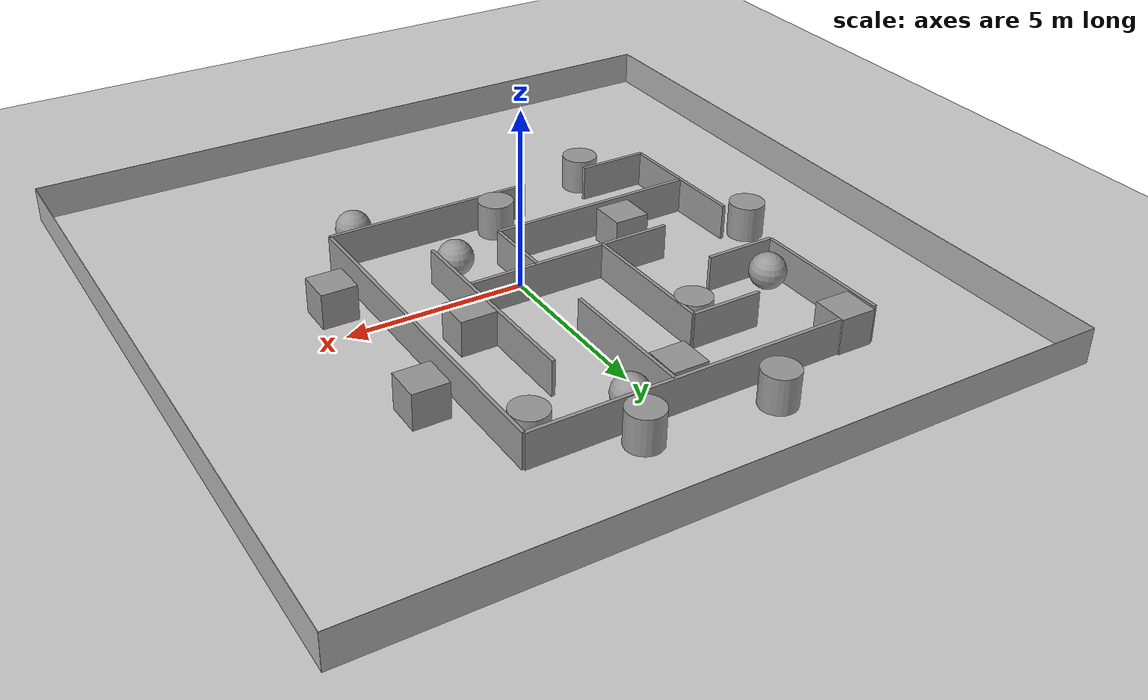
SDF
<sdf version="1.7">
 <world name="default">
  <physics type="ode">
   <max_step_size>0.004</max_step_size>
   <real_time_factor>1</real_time_factor>
   <real_time_update_rate>250</real_time_update_rate>
  </physics>
  <plugin name="gz::sim::systems::Physics" filename="gz-sim-physics-system"/>
  <plugin name="gz::sim::systems::UserCommands" filename="gz-sim-user-commands-system"/>
  <plugin name="gz::sim::systems::SceneBroadcaster" filename="gz-sim-scene-broadcaster-system"/>
  <plugin name="gz::sim::systems::Contact" filename="gz-sim-contact-system"/>
  <plugin name="gz::sim::systems::Imu" filename="gz-sim-imu-system"/>
  <plugin name="gz::sim::systems::Magnetometer" filename="gz-sim-magnetometer-system"/>
  <plugin name="gz::sim::systems::Altimeter" filename="gz-sim-altimeter-system"/>
  <plugin name="gz::sim::systems::NavSat" filename="gz-sim-navsat-system"/>
  <plugin name="gz::sim::systems::Sensors" filename="gz-sim-sensors-system">
   <render_engine>ogre2</render_engine>
  </plugin>
  <gravity>0 0 -9.8</gravity>
  <magnetic_field>6e-06 2.3e-05 -4.2e-05</magnetic_field>
  <atmosphere type="adiabatic"/>
  <spherical_coordinates>
   <surface_model>EARTH_WGS84</surface_model>
   <latitude_deg>39.7948</latitude_deg>
   <longitude_deg>-84.0863</longitude_deg>
   <elevation>265.2</elevation>
   <heading_deg>0</heading_deg>
  </spherical_coordinates>
  <scene>
   <grid>1</grid>
   <ambient>0.4 0.4 0.4 1</ambient>
   <background>0.7 0.7 0.7 1</background>
   <shadows>0</shadows>
  </scene>
  <light name="sunUTC" type="directional">
   <pose>0 0 500 0 -0 0</pose>
   <cast_shadows>0</cast_shadows>
   <direction>0.001 0.625 -0.78</direction>
   <diffuse>0.904 0.904 0.904 1</diffuse>
   <specular>0.271 0.271 0.271 1</specular>
   <attenuation><range>2000</range><linear>0</linear><constant>1</constant><quadratic>0</quadratic></attenuation>
   <spot><inner_angle>0</inner_angle><outer_angle>0</outer_angle><falloff>0</falloff></spot>
   <intensity>1</intensity>
  </light>
  <model name="ground_plane">
   <static>1</static>
   <link name="link">
    <collision name="collision">
     <geometry><plane><normal>0 0 1</normal><size>1 1</size></plane></geometry>
    </collision>
    <visual name="visual">
     <geometry><plane><normal>0 0 1</normal><size>100 100</size></plane></geometry>
     <material>
      <ambient>0.8 0.8 0.8 1</ambient>
      <diffuse>0.8 0.8 0.8 1</diffuse>
      <specular>0.8 0.8 0.8 1</specular>
     </material>
    </visual>
    <inertial>
     <mass>1</mass>
     <inertia><ixx>1</ixx><ixy>0</ixy><ixz>0</ixz><iyy>1</iyy><iyz>0</iyz><izz>1</izz></inertia>
    </inertial>
   </link>
  </model>
  <model name="wall_1">
   <pose>-10 0 0.5 0 0 -1.57</pose>
   <static>1</static>
   <link name="link">
    <collision name="collision"><geometry><box><size>20 0.01 1</size></box></geometry></collision>
    <visual name="visual">
     <geometry><box><size>20 0.01 1</size></box></geometry>
     <material>
      <ambient>0.7 0.7 0.7 1</ambient>
      <diffuse>0.7 0.7 0.7 1</diffuse>
      <specular>0.7 0.7 0.7 1</specular>
     </material>
    </visual>
    <inertial>
     <mass>1</mass>
     <inertia><ixx>1</ixx><ixy>0</ixy><ixz>0</ixz><iyy>1</iyy><iyz>0</iyz><izz>1</izz></inertia>
    </inertial>
   </link>
  </model>
  <model name="wall_2">
   <pose>10 0 0.5 0 0 -1.57</pose>
   <static>1</static>
   <link name="link">
    <collision name="collision"><geometry><box><size>20 0.01 1</size></box></geometry></collision>
    <visual name="visual">
     <geometry><box><size>20 0.01 1</size></box></geometry>
     <material>
      <ambient>0.7 0.7 0.7 1</ambient>
      <diffuse>0.7 0.7 0.7 1</diffuse>
      <specular>0.7 0.7 0.7 1</specular>
     </material>
    </visual>
    <inertial>
     <mass>1</mass>
     <inertia><ixx>1</ixx><ixy>0</ixy><ixz>0</ixz><iyy>1</iyy><iyz>0</iyz><izz>1</izz></inertia>
    </inertial>
   </link>
  </model>
  <model name="wall_3">
   <pose>0 10 0.5 0 -0 0</pose>
   <static>1</static>
   <link name="link">
    <collision name="collision"><geometry><box><size>20 0.01 1</size></box></geometry></collision>
    <visual name="visual">
     <geometry><box><size>20 0.01 1</size></box></geometry>
     <material>
      <ambient>0.7 0.7 0.7 1</ambient>
      <diffuse>0.7 0.7 0.7 1</diffuse>
      <specular>0.7 0.7 0.7 1</specular>
     </material>
    </visual>
    <inertial>
     <mass>1</mass>
     <inertia><ixx>1</ixx><ixy>0</ixy><ixz>0</ixz><iyy>1</iyy><iyz>0</iyz><izz>1</izz></inertia>
    </inertial>
   </link>
  </model>
  <model name="wall_4">
   <pose>0 -10 0.5 0 -0 0</pose>
   <static>1</static>
   <link name="link">
    <collision name="collision"><geometry><box><size>20 0.01 1</size></box></geometry></collision>
    <visual name="visual">
     <geometry><box><size>20 0.01 1</size></box></geometry>
     <material>
      <ambient>0.7 0.7 0.7 1</ambient>
      <diffuse>0.7 0.7 0.7 1</diffuse>
      <specular>0.7 0.7 0.7 1</specular>
     </material>
    </visual>
    <inertial>
     <mass>1</mass>
     <inertia><ixx>1</ixx><ixy>0</ixy><ixz>0</ixz><iyy>1</iyy><iyz>0</iyz><izz>1</izz></inertia>
    </inertial>
   </link>
  </model>
  <model name="s_maze">
   <link name="link_0_clone">
    <inertial>
     <mass>2000</mass>
     <inertia><ixx>16833.3</ixx><ixy>0</ixy><ixz>0</ixz><iyy>168.333</iyy><iyz>0</iyz><izz>16668.3</izz></inertia>
    </inertial>
    <pose>5 0 0 0 -0 0</pose>
    <visual name="visual">
     <geometry><box><size>0.1 10 1</size></box></geometry>
     <material>
      <lighting>1</lighting>
      <script><uri>file://media/materials/scripts/gazebo.material</uri><name>Gazebo/Grey</name></script>
      <shader type="vertex"><normal_map>__default__</normal_map></shader>
      <ambient>0.3 0.3 0.3 1</ambient>
      <diffuse>0.7 0.7 0.7 1</diffuse>
      <specular>0.01 0.01 0.01 1</specular>
      <emissive>0 0 0 1</emissive>
     </material>
    </visual>
    <collision name="collision">
     <geometry><box><size>0.1 10 1</size></box></geometry>
     <surface>
      <friction>
       <ode><mu>1</mu><mu2>1</mu2><fdir1>0 0 0</fdir1><slip1>0</slip1><slip2>0</slip2></ode>
       <torsional>
        <coefficient>1</coefficient>
        <patch_radius>0</patch_radius>
        <surface_radius>0</surface_radius>
        <use_patch_radius>1</use_patch_radius>
        <ode><slip>0</slip></ode>
       </torsional>
      </friction>
      <bounce><restitution_coefficient>0</restitution_coefficient><threshold>1e+06</threshold></bounce>
      <contact>
       <collide_without_contact>0</collide_without_contact>
       <collide_without_contact_bitmask>1</collide_without_contact_bitmask>
       <collide_bitmask>1</collide_bitmask>
       <ode>
        <soft_cfm>0</soft_cfm>
        <soft_erp>0.2</soft_erp>
        <kp>1e+13</kp>
        <kd>1</kd>
        <max_vel>0.01</max_vel>
        <min_depth>0</min_depth>
       </ode>
       <bullet>
        <split_impulse>1</split_impulse>
        <split_impulse_penetration_threshold>-0.01</split_impulse_penetration_threshold>
        <soft_cfm>0</soft_cfm>
        <soft_erp>0.2</soft_erp>
        <kp>1e+13</kp>
        <kd>1</kd>
       </bullet>
      </contact>
     </surface>
    </collision>
   </link>
   <link name="link_0_clone_0_clone">
    <inertial>
     <mass>400</mass>
     <inertia><ixx>166.667</ixx><ixy>0</ixy><ixz>0</ixz><iyy>33.6667</iyy><iyz>0</iyz><izz>133.667</izz></inertia>
    </inertial>
    <pose>1 -2 -0 0 -0 0</pose>
    <visual name="visual">
     <geometry><box><size>0.1 2 1</size></box></geometry>
     <material>
      <lighting>1</lighting>
      <script><uri>file://media/materials/scripts/gazebo.material</uri><name>Gazebo/Grey</name></script>
      <shader type="vertex"><normal_map>__default__</normal_map></shader>
      <ambient>0.3 0.3 0.3 1</ambient>
      <diffuse>0.7 0.7 0.7 1</diffuse>
      <specular>0.01 0.01 0.01 1</specular>
      <emissive>0 0 0 1</emissive>
     </material>
    </visual>
    <collision name="collision">
     <geometry><box><size>0.1 2 1</size></box></geometry>
     <surface>
      <friction>
       <ode><mu>1</mu><mu2>1</mu2><fdir1>0 0 0</fdir1><slip1>0</slip1><slip2>0</slip2></ode>
       <torsional>
        <coefficient>1</coefficient>
        <patch_radius>0</patch_radius>
        <surface_radius>0</surface_radius>
        <use_patch_radius>1</use_patch_radius>
        <ode><slip>0</slip></ode>
       </torsional>
      </friction>
      <bounce><restitution_coefficient>0</restitution_coefficient><threshold>1e+06</threshold></bounce>
      <contact>
       <collide_without_contact>0</collide_without_contact>
       <collide_without_contact_bitmask>1</collide_without_contact_bitmask>
       <collide_bitmask>1</collide_bitmask>
       <ode>
        <soft_cfm>0</soft_cfm>
        <soft_erp>0.2</soft_erp>
        <kp>1e+13</kp>
        <kd>1</kd>
        <max_vel>0.01</max_vel>
        <min_depth>0</min_depth>
       </ode>
       <bullet>
        <split_impulse>1</split_impulse>
        <split_impulse_penetration_threshold>-0.01</split_impulse_penetration_threshold>
        <soft_cfm>0</soft_cfm>
        <soft_erp>0.2</soft_erp>
        <kp>1e+13</kp>
        <kd>1</kd>
       </bullet>
      </contact>
     </surface>
    </collision>
   </link>
   <link name="link_0_clone_1_clone">
    <inertial>
     <mass>2000</mass>
     <inertia><ixx>16833.3</ixx><ixy>0</ixy><ixz>0</ixz><iyy>168.333</iyy><iyz>0</iyz><izz>16668.3</izz></inertia>
    </inertial>
    <pose>-0 5 -0 0 -0 1.5708</pose>
    <visual name="visual">
     <geometry><box><size>0.1 10 1</size></box></geometry>
     <material>
      <lighting>1</lighting>
      <script><uri>file://media/materials/scripts/gazebo.material</uri><name>Gazebo/Grey</name></script>
      <shader type="vertex"><normal_map>__default__</normal_map></shader>
      <ambient>0.3 0.3 0.3 1</ambient>
      <diffuse>0.7 0.7 0.7 1</diffuse>
      <specular>0.01 0.01 0.01 1</specular>
      <emissive>0 0 0 1</emissive>
     </material>
    </visual>
    <collision name="collision">
     <geometry><box><size>0.1 10 1</size></box></geometry>
     <surface>
      <friction>
       <ode><mu>1</mu><mu2>1</mu2><fdir1>0 0 0</fdir1><slip1>0</slip1><slip2>0</slip2></ode>
       <torsional>
        <coefficient>1</coefficient>
        <patch_radius>0</patch_radius>
        <surface_radius>0</surface_radius>
        <use_patch_radius>1</use_patch_radius>
        <ode><slip>0</slip></ode>
       </torsional>
      </friction>
      <bounce><restitution_coefficient>0</restitution_coefficient><threshold>1e+06</threshold></bounce>
      <contact>
       <collide_without_contact>0</collide_without_contact>
       <collide_without_contact_bitmask>1</collide_without_contact_bitmask>
       <collide_bitmask>1</collide_bitmask>
       <ode>
        <soft_cfm>0</soft_cfm>
        <soft_erp>0.2</soft_erp>
        <kp>1e+13</kp>
        <kd>1</kd>
        <max_vel>0.01</max_vel>
        <min_depth>0</min_depth>
       </ode>
       <bullet>
        <split_impulse>1</split_impulse>
        <split_impulse_penetration_threshold>-0.01</split_impulse_penetration_threshold>
        <soft_cfm>0</soft_cfm>
        <soft_erp>0.2</soft_erp>
        <kp>1e+13</kp>
        <kd>1</kd>
       </bullet>
      </contact>
     </surface>
    </collision>
   </link>
   <link name="link_0_clone_1_clone_0">
    <inertial>
     <mass>1200</mass>
     <inertia><ixx>3700</ixx><ixy>0</ixy><ixz>0</ixz><iyy>101</iyy><iyz>0</iyz><izz>3601</izz></inertia>
    </inertial>
    <pose>-2 -3 -0 0 -0 1.5708</pose>
    <visual name="visual">
     <geometry><box><size>0.1 6 1</size></box></geometry>
     <material>
      <lighting>1</lighting>
      <script><uri>file://media/materials/scripts/gazebo.material</uri><name>Gazebo/Grey</name></script>
      <shader type="vertex"><normal_map>__default__</normal_map></shader>
      <ambient>0.3 0.3 0.3 1</ambient>
      <diffuse>0.7 0.7 0.7 1</diffuse>
      <specular>0.01 0.01 0.01 1</specular>
      <emissive>0 0 0 1</emissive>
     </material>
    </visual>
    <collision name="collision">
     <geometry><box><size>0.1 6 1</size></box></geometry>
     <surface>
      <friction>
       <ode><mu>1</mu><mu2>1</mu2><fdir1>0 0 0</fdir1><slip1>0</slip1><slip2>0</slip2></ode>
       <torsional>
        <coefficient>1</coefficient>
        <patch_radius>0</patch_radius>
        <surface_radius>0</surface_radius>
        <use_patch_radius>1</use_patch_radius>
        <ode><slip>0</slip></ode>
       </torsional>
      </friction>
      <bounce><restitution_coefficient>0</restitution_coefficient><threshold>1e+06</threshold></bounce>
      <contact>
       <collide_without_contact>0</collide_without_contact>
       <collide_without_contact_bitmask>1</collide_without_contact_bitmask>
       <collide_bitmask>1</collide_bitmask>
       <ode>
        <soft_cfm>0</soft_cfm>
        <soft_erp>0.2</soft_erp>
        <kp>1e+13</kp>
        <kd>1</kd>
        <max_vel>0.01</max_vel>
        <min_depth>0</min_depth>
       </ode>
       <bullet>
        <split_impulse>1</split_impulse>
        <split_impulse_penetration_threshold>-0.01</split_impulse_penetration_threshold>
        <soft_cfm>0</soft_cfm>
        <soft_erp>0.2</soft_erp>
        <kp>1e+13</kp>
        <kd>1</kd>
       </bullet>
      </contact>
     </surface>
    </collision>
   </link>
   <link name="link_0_clone_1_clone_0_clone">
    <inertial>
     <mass>1200</mass>
     <inertia><ixx>3700</ixx><ixy>0</ixy><ixz>0</ixz><iyy>101</iyy><iyz>0</iyz><izz>3601</izz></inertia>
    </inertial>
    <pose>-0 -1 0 0 -0 1.5708</pose>
    <visual name="visual">
     <geometry><box><size>0.1 6 1</size></box></geometry>
     <material>
      <lighting>1</lighting>
      <script><uri>file://media/materials/scripts/gazebo.material</uri><name>Gazebo/Grey</name></script>
      <shader type="vertex"><normal_map>__default__</normal_map></shader>
      <ambient>0.3 0.3 0.3 1</ambient>
      <diffuse>0.7 0.7 0.7 1</diffuse>
      <specular>0.01 0.01 0.01 1</specular>
      <emissive>0 0 0 1</emissive>
     </material>
    </visual>
    <collision name="collision">
     <geometry><box><size>0.1 6 1</size></box></geometry>
     <surface>
      <friction>
       <ode><mu>1</mu><mu2>1</mu2><fdir1>0 0 0</fdir1><slip1>0</slip1><slip2>0</slip2></ode>
       <torsional>
        <coefficient>1</coefficient>
        <patch_radius>0</patch_radius>
        <surface_radius>0</surface_radius>
        <use_patch_radius>1</use_patch_radius>
        <ode><slip>0</slip></ode>
       </torsional>
      </friction>
      <bounce><restitution_coefficient>0</restitution_coefficient><threshold>1e+06</threshold></bounce>
      <contact>
       <collide_without_contact>0</collide_without_contact>
       <collide_without_contact_bitmask>1</collide_without_contact_bitmask>
       <collide_bitmask>1</collide_bitmask>
       <ode>
        <soft_cfm>0</soft_cfm>
        <soft_erp>0.2</soft_erp>
        <kp>1e+13</kp>
        <kd>1</kd>
        <max_vel>0.01</max_vel>
        <min_depth>0</min_depth>
       </ode>
       <bullet>
        <split_impulse>1</split_impulse>
        <split_impulse_penetration_threshold>-0.01</split_impulse_penetration_threshold>
        <soft_cfm>0</soft_cfm>
        <soft_erp>0.2</soft_erp>
        <kp>1e+13</kp>
        <kd>1</kd>
       </bullet>
      </contact>
     </surface>
    </collision>
   </link>
   <link name="link_0_clone_1_clone_0_clone_0">
    <inertial>
     <mass>1200</mass>
     <inertia><ixx>3700</ixx><ixy>0</ixy><ixz>0</ixz><iyy>101</iyy><iyz>0</iyz><izz>3601</izz></inertia>
    </inertial>
    <pose>2 -5 0 -0.004588 -0.005224 1.5715</pose>
    <visual name="visual">
     <geometry><box><size>0.1 6 1</size></box></geometry>
     <material>
      <lighting>1</lighting>
      <script><uri>file://media/materials/scripts/gazebo.material</uri><name>Gazebo/Grey</name></script>
      <shader type="vertex"><normal_map>__default__</normal_map></shader>
      <ambient>0.3 0.3 0.3 1</ambient>
      <diffuse>0.7 0.7 0.7 1</diffuse>
      <specular>0.01 0.01 0.01 1</specular>
      <emissive>0 0 0 1</emissive>
     </material>
    </visual>
    <collision name="collision">
     <geometry><box><size>0.1 6 1</size></box></geometry>
     <surface>
      <friction>
       <ode><mu>1</mu><mu2>1</mu2><fdir1>0 0 0</fdir1><slip1>0</slip1><slip2>0</slip2></ode>
       <torsional>
        <coefficient>1</coefficient>
        <patch_radius>0</patch_radius>
        <surface_radius>0</surface_radius>
        <use_patch_radius>1</use_patch_radius>
        <ode><slip>0</slip></ode>
       </torsional>
      </friction>
      <bounce><restitution_coefficient>0</restitution_coefficient><threshold>1e+06</threshold></bounce>
      <contact>
       <collide_without_contact>0</collide_without_contact>
       <collide_without_contact_bitmask>1</collide_without_contact_bitmask>
       <collide_bitmask>1</collide_bitmask>
       <ode>
        <soft_cfm>0</soft_cfm>
        <soft_erp>0.2</soft_erp>
        <kp>1e+13</kp>
        <kd>1</kd>
        <max_vel>0.01</max_vel>
        <min_depth>0</min_depth>
       </ode>
       <bullet>
        <split_impulse>1</split_impulse>
        <split_impulse_penetration_threshold>-0.01</split_impulse_penetration_threshold>
        <soft_cfm>0</soft_cfm>
        <soft_erp>0.2</soft_erp>
        <kp>1e+13</kp>
        <kd>1</kd>
       </bullet>
      </contact>
     </surface>
    </collision>
   </link>
   <link name="link_0_clone_1_clone_0_clone_clone">
    <inertial>
     <mass>400</mass>
     <inertia><ixx>166.667</ixx><ixy>0</ixy><ixz>0</ixz><iyy>33.6667</iyy><iyz>0</iyz><izz>133.667</izz></inertia>
    </inertial>
    <pose>-2 3 -0 0 -0 1.5708</pose>
    <visual name="visual">
     <geometry><box><size>0.1 2 1</size></box></geometry>
     <material>
      <lighting>1</lighting>
      <script><uri>file://media/materials/scripts/gazebo.material</uri><name>Gazebo/Grey</name></script>
      <shader type="vertex"><normal_map>__default__</normal_map></shader>
      <ambient>0.3 0.3 0.3 1</ambient>
      <diffuse>0.7 0.7 0.7 1</diffuse>
      <specular>0.01 0.01 0.01 1</specular>
      <emissive>0 0 0 1</emissive>
     </material>
    </visual>
    <collision name="collision">
     <geometry><box><size>0.1 2 1</size></box></geometry>
     <surface>
      <friction>
       <ode><mu>1</mu><mu2>1</mu2><fdir1>0 0 0</fdir1><slip1>0</slip1><slip2>0</slip2></ode>
       <torsional>
        <coefficient>1</coefficient>
        <patch_radius>0</patch_radius>
        <surface_radius>0</surface_radius>
        <use_patch_radius>1</use_patch_radius>
        <ode><slip>0</slip></ode>
       </torsional>
      </friction>
      <bounce><restitution_coefficient>0</restitution_coefficient><threshold>1e+06</threshold></bounce>
      <contact>
       <collide_without_contact>0</collide_without_contact>
       <collide_without_contact_bitmask>1</collide_without_contact_bitmask>
       <collide_bitmask>1</collide_bitmask>
       <ode>
        <soft_cfm>0</soft_cfm>
        <soft_erp>0.2</soft_erp>
        <kp>1e+13</kp>
        <kd>1</kd>
        <max_vel>0.01</max_vel>
        <min_depth>0</min_depth>
       </ode>
       <bullet>
        <split_impulse>1</split_impulse>
        <split_impulse_penetration_threshold>-0.01</split_impulse_penetration_threshold>
        <soft_cfm>0</soft_cfm>
        <soft_erp>0.2</soft_erp>
        <kp>1e+13</kp>
        <kd>1</kd>
       </bullet>
      </contact>
     </surface>
    </collision>
   </link>
   <link name="link_0_clone_1_clone_0_clone_clone_clone">
    <inertial>
     <mass>400</mass>
     <inertia><ixx>166.667</ixx><ixy>0</ixy><ixz>0</ixz><iyy>33.6667</iyy><iyz>0</iyz><izz>133.667</izz></inertia>
    </inertial>
    <pose>-4 1 0 0 -0 1.5708</pose>
    <visual name="visual">
     <geometry><box><size>0.1 2 1</size></box></geometry>
     <material>
      <lighting>1</lighting>
      <script><uri>file://media/materials/scripts/gazebo.material</uri><name>Gazebo/Grey</name></script>
      <shader type="vertex"><normal_map>__default__</normal_map></shader>
      <ambient>0.3 0.3 0.3 1</ambient>
      <diffuse>0.7 0.7 0.7 1</diffuse>
      <specular>0.01 0.01 0.01 1</specular>
      <emissive>0 0 0 1</emissive>
     </material>
    </visual>
    <collision name="collision">
     <geometry><box><size>0.1 2 1</size></box></geometry>
     <surface>
      <friction>
       <ode><mu>1</mu><mu2>1</mu2><fdir1>0 0 0</fdir1><slip1>0</slip1><slip2>0</slip2></ode>
       <torsional>
        <coefficient>1</coefficient>
        <patch_radius>0</patch_radius>
        <surface_radius>0</surface_radius>
        <use_patch_radius>1</use_patch_radius>
        <ode><slip>0</slip></ode>
       </torsional>
      </friction>
      <bounce><restitution_coefficient>0</restitution_coefficient><threshold>1e+06</threshold></bounce>
      <contact>
       <collide_without_contact>0</collide_without_contact>
       <collide_without_contact_bitmask>1</collide_without_contact_bitmask>
       <collide_bitmask>1</collide_bitmask>
       <ode>
        <soft_cfm>0</soft_cfm>
        <soft_erp>0.2</soft_erp>
        <kp>1e+13</kp>
        <kd>1</kd>
        <max_vel>0.01</max_vel>
        <min_depth>0</min_depth>
       </ode>
       <bullet>
        <split_impulse>1</split_impulse>
        <split_impulse_penetration_threshold>-0.01</split_impulse_penetration_threshold>
        <soft_cfm>0</soft_cfm>
        <soft_erp>0.2</soft_erp>
        <kp>1e+13</kp>
        <kd>1</kd>
       </bullet>
      </contact>
     </surface>
    </collision>
   </link>
   <link name="link_0_clone_1_clone_0_clone_clone_clone_0">
    <inertial>
     <mass>400</mass>
     <inertia><ixx>166.667</ixx><ixy>0</ixy><ixz>0</ixz><iyy>33.6667</iyy><iyz>0</iyz><izz>133.667</izz></inertia>
    </inertial>
    <pose>-4 -5 -0 -0.004588 -0.005224 1.5715</pose>
    <visual name="visual">
     <geometry><box><size>0.1 2 1</size></box></geometry>
     <material>
      <lighting>1</lighting>
      <script><uri>file://media/materials/scripts/gazebo.material</uri><name>Gazebo/Grey</name></script>
      <shader type="vertex"><normal_map>__default__</normal_map></shader>
      <ambient>0.3 0.3 0.3 1</ambient>
      <diffuse>0.7 0.7 0.7 1</diffuse>
      <specular>0.01 0.01 0.01 1</specular>
      <emissive>0 0 0 1</emissive>
     </material>
    </visual>
    <collision name="collision">
     <geometry><box><size>0.1 2 1</size></box></geometry>
     <surface>
      <friction>
       <ode><mu>1</mu><mu2>1</mu2><fdir1>0 0 0</fdir1><slip1>0</slip1><slip2>0</slip2></ode>
       <torsional>
        <coefficient>1</coefficient>
        <patch_radius>0</patch_radius>
        <surface_radius>0</surface_radius>
        <use_patch_radius>1</use_patch_radius>
        <ode><slip>0</slip></ode>
       </torsional>
      </friction>
      <bounce><restitution_coefficient>0</restitution_coefficient><threshold>1e+06</threshold></bounce>
      <contact>
       <collide_without_contact>0</collide_without_contact>
       <collide_without_contact_bitmask>1</collide_without_contact_bitmask>
       <collide_bitmask>1</collide_bitmask>
       <ode>
        <soft_cfm>0</soft_cfm>
        <soft_erp>0.2</soft_erp>
        <kp>1e+13</kp>
        <kd>1</kd>
        <max_vel>0.01</max_vel>
        <min_depth>0</min_depth>
       </ode>
       <bullet>
        <split_impulse>1</split_impulse>
        <split_impulse_penetration_threshold>-0.01</split_impulse_penetration_threshold>
        <soft_cfm>0</soft_cfm>
        <soft_erp>0.2</soft_erp>
        <kp>1e+13</kp>
        <kd>1</kd>
       </bullet>
      </contact>
     </surface>
    </collision>
   </link>
   <link name="link_0_clone_2">
    <inertial>
     <mass>1200</mass>
     <inertia><ixx>3700</ixx><ixy>0</ixy><ixz>0</ixz><iyy>101</iyy><iyz>0</iyz><izz>3601</izz></inertia>
    </inertial>
    <pose>3 -0 -0 0 -0 0</pose>
    <visual name="visual">
     <geometry><box><size>0.1 6 1</size></box></geometry>
     <material>
      <lighting>1</lighting>
      <script><uri>file://media/materials/scripts/gazebo.material</uri><name>Gazebo/Grey</name></script>
      <shader type="vertex"><normal_map>__default__</normal_map></shader>
      <ambient>0.3 0.3 0.3 1</ambient>
      <diffuse>0.7 0.7 0.7 1</diffuse>
      <specular>0.01 0.01 0.01 1</specular>
      <emissive>0 0 0 1</emissive>
     </material>
    </visual>
    <collision name="collision">
     <geometry><box><size>0.1 6 1</size></box></geometry>
     <surface>
      <friction>
       <ode><mu>1</mu><mu2>1</mu2><fdir1>0 0 0</fdir1><slip1>0</slip1><slip2>0</slip2></ode>
       <torsional>
        <coefficient>1</coefficient>
        <patch_radius>0</patch_radius>
        <surface_radius>0</surface_radius>
        <use_patch_radius>1</use_patch_radius>
        <ode><slip>0</slip></ode>
       </torsional>
      </friction>
      <bounce><restitution_coefficient>0</restitution_coefficient><threshold>1e+06</threshold></bounce>
      <contact>
       <collide_without_contact>0</collide_without_contact>
       <collide_without_contact_bitmask>1</collide_without_contact_bitmask>
       <collide_bitmask>1</collide_bitmask>
       <ode>
        <soft_cfm>0</soft_cfm>
        <soft_erp>0.2</soft_erp>
        <kp>1e+13</kp>
        <kd>1</kd>
        <max_vel>0.01</max_vel>
        <min_depth>0</min_depth>
       </ode>
       <bullet>
        <split_impulse>1</split_impulse>
        <split_impulse_penetration_threshold>-0.01</split_impulse_penetration_threshold>
        <soft_cfm>0</soft_cfm>
        <soft_erp>0.2</soft_erp>
        <kp>1e+13</kp>
        <kd>1</kd>
       </bullet>
      </contact>
     </surface>
    </collision>
   </link>
   <link name="link_0_clone_2_clone">
    <inertial>
     <mass>0.188114</mass>
     <inertia>
      <ixx>0.0313523</ixx>
      <ixy>0</ixy>
      <ixz>0</ixz>
      <iyy>0.0162309</iyy>
      <iyz>0</iyz>
      <izz>0.0162309</izz>
     </inertia>
    </inertial>
    <pose>-1 1 0 0 -0 0</pose>
    <visual name="visual">
     <geometry><box><size>0.1 4 1</size></box></geometry>
     <material>
      <lighting>1</lighting>
      <script><uri>file://media/materials/scripts/gazebo.material</uri><name>Gazebo/Grey</name></script>
      <shader type="vertex"><normal_map>__default__</normal_map></shader>
      <ambient>0.3 0.3 0.3 1</ambient>
      <diffuse>0.7 0.7 0.7 1</diffuse>
      <specular>0.01 0.01 0.01 1</specular>
      <emissive>0 0 0 1</emissive>
     </material>
    </visual>
    <collision name="collision">
     <geometry><box><size>0.1 4 1</size></box></geometry>
     <surface>
      <friction>
       <ode><mu>1</mu><mu2>1</mu2><fdir1>0 0 0</fdir1><slip1>0</slip1><slip2>0</slip2></ode>
       <torsional>
        <coefficient>1</coefficient>
        <patch_radius>0</patch_radius>
        <surface_radius>0</surface_radius>
        <use_patch_radius>1</use_patch_radius>
        <ode><slip>0</slip></ode>
       </torsional>
      </friction>
      <bounce><restitution_coefficient>0</restitution_coefficient><threshold>1e+06</threshold></bounce>
      <contact>
       <collide_without_contact>0</collide_without_contact>
       <collide_without_contact_bitmask>1</collide_without_contact_bitmask>
       <collide_bitmask>1</collide_bitmask>
       <ode>
        <soft_cfm>0</soft_cfm>
        <soft_erp>0.2</soft_erp>
        <kp>1e+13</kp>
        <kd>1</kd>
        <max_vel>0.01</max_vel>
        <min_depth>0</min_depth>
       </ode>
       <bullet>
        <split_impulse>1</split_impulse>
        <split_impulse_penetration_threshold>-0.01</split_impulse_penetration_threshold>
        <soft_cfm>0</soft_cfm>
        <soft_erp>0.2</soft_erp>
        <kp>1e+13</kp>
        <kd>1</kd>
       </bullet>
      </contact>
     </surface>
    </collision>
   </link>
   <link name="link_0_clone_2_clone_clone">
    <inertial>
     <mass>800</mass>
     <inertia><ixx>1133.33</ixx><ixy>0</ixy><ixz>0</ixz><iyy>67.3333</iyy><iyz>0</iyz><izz>1067.33</izz></inertia>
    </inertial>
    <pose>1 3 -0 0 -0 0</pose>
    <visual name="visual">
     <geometry><box><size>0.1 4 1</size></box></geometry>
     <material>
      <lighting>1</lighting>
      <script><uri>file://media/materials/scripts/gazebo.material</uri><name>Gazebo/Grey</name></script>
      <shader type="vertex"><normal_map>__default__</normal_map></shader>
      <ambient>0.3 0.3 0.3 1</ambient>
      <diffuse>0.7 0.7 0.7 1</diffuse>
      <specular>0.01 0.01 0.01 1</specular>
      <emissive>0 0 0 1</emissive>
     </material>
    </visual>
    <collision name="collision">
     <geometry><box><size>0.1 4 1</size></box></geometry>
     <surface>
      <friction>
       <ode><mu>1</mu><mu2>1</mu2><fdir1>0 0 0</fdir1><slip1>0</slip1><slip2>0</slip2></ode>
       <torsional>
        <coefficient>1</coefficient>
        <patch_radius>0</patch_radius>
        <surface_radius>0</surface_radius>
        <use_patch_radius>1</use_patch_radius>
        <ode><slip>0</slip></ode>
       </torsional>
      </friction>
      <bounce><restitution_coefficient>0</restitution_coefficient><threshold>1e+06</threshold></bounce>
      <contact>
       <collide_without_contact>0</collide_without_contact>
       <collide_without_contact_bitmask>1</collide_without_contact_bitmask>
       <collide_bitmask>1</collide_bitmask>
       <ode>
        <soft_cfm>0</soft_cfm>
        <soft_erp>0.2</soft_erp>
        <kp>1e+13</kp>
        <kd>1</kd>
        <max_vel>0.01</max_vel>
        <min_depth>0</min_depth>
       </ode>
       <bullet>
        <split_impulse>1</split_impulse>
        <split_impulse_penetration_threshold>-0.01</split_impulse_penetration_threshold>
        <soft_cfm>0</soft_cfm>
        <soft_erp>0.2</soft_erp>
        <kp>1e+13</kp>
        <kd>1</kd>
       </bullet>
      </contact>
     </surface>
    </collision>
   </link>
   <link name="link_0_clone_2_clone_clone_0">
    <inertial>
     <mass>800</mass>
     <inertia><ixx>1133.33</ixx><ixy>0</ixy><ixz>0</ixz><iyy>67.3333</iyy><iyz>0</iyz><izz>1067.33</izz></inertia>
    </inertial>
    <pose>-5 3 -0 0.005224 -0.004588 0.000681</pose>
    <visual name="visual">
     <geometry><box><size>0.1 4 1</size></box></geometry>
     <material>
      <lighting>1</lighting>
      <script><uri>file://media/materials/scripts/gazebo.material</uri><name>Gazebo/Grey</name></script>
      <shader type="vertex"><normal_map>__default__</normal_map></shader>
      <ambient>0.3 0.3 0.3 1</ambient>
      <diffuse>0.7 0.7 0.7 1</diffuse>
      <specular>0.01 0.01 0.01 1</specular>
      <emissive>0 0 0 1</emissive>
     </material>
    </visual>
    <collision name="collision">
     <geometry><box><size>0.1 4 1</size></box></geometry>
     <surface>
      <friction>
       <ode><mu>1</mu><mu2>1</mu2><fdir1>0 0 0</fdir1><slip1>0</slip1><slip2>0</slip2></ode>
       <torsional>
        <coefficient>1</coefficient>
        <patch_radius>0</patch_radius>
        <surface_radius>0</surface_radius>
        <use_patch_radius>1</use_patch_radius>
        <ode><slip>0</slip></ode>
       </torsional>
      </friction>
      <bounce><restitution_coefficient>0</restitution_coefficient><threshold>1e+06</threshold></bounce>
      <contact>
       <collide_without_contact>0</collide_without_contact>
       <collide_without_contact_bitmask>1</collide_without_contact_bitmask>
       <collide_bitmask>1</collide_bitmask>
       <ode>
        <soft_cfm>0</soft_cfm>
        <soft_erp>0.2</soft_erp>
        <kp>1e+13</kp>
        <kd>1</kd>
        <max_vel>0.01</max_vel>
        <min_depth>0</min_depth>
       </ode>
       <bullet>
        <split_impulse>1</split_impulse>
        <split_impulse_penetration_threshold>-0.01</split_impulse_penetration_threshold>
        <soft_cfm>0</soft_cfm>
        <soft_erp>0.2</soft_erp>
        <kp>1e+13</kp>
        <kd>1</kd>
       </bullet>
      </contact>
     </surface>
    </collision>
   </link>
   <link name="link_0_clone_2_clone_clone_0_clone">
    <inertial>
     <mass>800</mass>
     <inertia><ixx>1133.33</ixx><ixy>0</ixy><ixz>0</ixz><iyy>67.3333</iyy><iyz>0</iyz><izz>1067.33</izz></inertia>
    </inertial>
    <pose>-5 -3 -0 0.010445 -0.009179 0.001338</pose>
    <visual name="visual">
     <geometry><box><size>0.1 4 1</size></box></geometry>
     <material>
      <lighting>1</lighting>
      <script><uri>file://media/materials/scripts/gazebo.material</uri><name>Gazebo/Grey</name></script>
      <shader type="vertex"><normal_map>__default__</normal_map></shader>
      <ambient>0.3 0.3 0.3 1</ambient>
      <diffuse>0.7 0.7 0.7 1</diffuse>
      <specular>0.01 0.01 0.01 1</specular>
      <emissive>0 0 0 1</emissive>
     </material>
    </visual>
    <collision name="collision">
     <geometry><box><size>0.1 4 1</size></box></geometry>
     <surface>
      <friction>
       <ode><mu>1</mu><mu2>1</mu2><fdir1>0 0 0</fdir1><slip1>0</slip1><slip2>0</slip2></ode>
       <torsional>
        <coefficient>1</coefficient>
        <patch_radius>0</patch_radius>
        <surface_radius>0</surface_radius>
        <use_patch_radius>1</use_patch_radius>
        <ode><slip>0</slip></ode>
       </torsional>
      </friction>
      <bounce><restitution_coefficient>0</restitution_coefficient><threshold>1e+06</threshold></bounce>
      <contact>
       <collide_without_contact>0</collide_without_contact>
       <collide_without_contact_bitmask>1</collide_without_contact_bitmask>
       <collide_bitmask>1</collide_bitmask>
       <ode>
        <soft_cfm>0</soft_cfm>
        <soft_erp>0.2</soft_erp>
        <kp>1e+13</kp>
        <kd>1</kd>
        <max_vel>0.01</max_vel>
        <min_depth>0</min_depth>
       </ode>
       <bullet>
        <split_impulse>1</split_impulse>
        <split_impulse_penetration_threshold>-0.01</split_impulse_penetration_threshold>
        <soft_cfm>0</soft_cfm>
        <soft_erp>0.2</soft_erp>
        <kp>1e+13</kp>
        <kd>1</kd>
       </bullet>
      </contact>
     </surface>
    </collision>
   </link>
   <static>0</static>
   <pose>-1.10617 1.67619 0.499718 4.9e-05 -8e-06 0.011422</pose>
  </model>
  <audio><device>default</device></audio>
  <model name="unit_sphere">
   <pose>-5.54558 3.29229 0.5 -0.132673 0.06273 0.003091</pose>
   <link name="link">
    <inertial>
     <mass>1</mass>
     <inertia><ixx>0.1</ixx><ixy>0</ixy><ixz>0</ixz><iyy>0.1</iyy><iyz>0</iyz><izz>0.1</izz></inertia>
    </inertial>
    <collision name="collision"><geometry><sphere><radius>0.5</radius></sphere></geometry></collision>
    <visual name="visual">
     <geometry><sphere><radius>0.5</radius></sphere></geometry>
     <material>
      <script><name>Gazebo/Grey</name><uri>file://media/materials/scripts/gazebo.material</uri></script>
     </material>
    </visual>
   </link>
  </model>
  <model name="unit_cylinder">
   <pose>-6.85274 0.667862 0.499883 0 -0 0</pose>
   <link name="link">
    <inertial>
     <mass>1</mass>
     <inertia><ixx>0.145833</ixx><ixy>0</ixy><ixz>0</ixz><iyy>0.145833</iyy><iyz>0</iyz><izz>0.125</izz></inertia>
    </inertial>
    <collision name="collision">
     <geometry><cylinder><radius>0.5</radius><length>1</length></cylinder></geometry>
    </collision>
    <visual name="visual">
     <geometry><cylinder><radius>0.5</radius><length>1</length></cylinder></geometry>
     <material>
      <script><name>Gazebo/Grey</name><uri>file://media/materials/scripts/gazebo.material</uri></script>
     </material>
    </visual>
   </link>
  </model>
  <model name="unit_box">
   <pose>-0.727082 6.03045 0.5 0 -0 0</pose>
   <link name="link">
    <inertial>
     <mass>1</mass>
     <inertia>
      <ixx>0.166667</ixx>
      <ixy>0</ixy>
      <ixz>0</ixz>
      <iyy>0.166667</iyy>
      <iyz>0</iyz>
      <izz>0.166667</izz>
     </inertia>
    </inertial>
    <collision name="collision"><geometry><box><size>1 1 1</size></box></geometry></collision>
    <visual name="visual">
     <geometry><box><size>1 1 1</size></box></geometry>
     <material>
      <script><name>Gazebo/Grey</name><uri>file://media/materials/scripts/gazebo.material</uri></script>
     </material>
    </visual>
   </link>
  </model>
  <model name="unit_sphere_0">
   <pose>0.63506 6.08692 0.5 0 -0 0</pose>
   <link name="link">
    <inertial>
     <mass>1</mass>
     <inertia><ixx>0.1</ixx><ixy>0</ixy><ixz>0</ixz><iyy>0.1</iyy><iyz>0</iyz><izz>0.1</izz></inertia>
    </inertial>
    <collision name="collision"><geometry><sphere><radius>0.5</radius></sphere></geometry></collision>
    <visual name="visual">
     <geometry><sphere><radius>0.5</radius></sphere></geometry>
     <material>
      <script><name>Gazebo/Grey</name><uri>file://media/materials/scripts/gazebo.material</uri></script>
     </material>
    </visual>
   </link>
  </model>
  <model name="unit_cylinder_0">
   <pose>-2.62472 4.00486 0.499883 0 -0 0</pose>
   <link name="link">
    <inertial>
     <mass>1</mass>
     <inertia><ixx>0.145833</ixx><ixy>0</ixy><ixz>0</ixz><iyy>0.145833</iyy><iyz>0</iyz><izz>0.125</izz></inertia>
    </inertial>
    <collision name="collision">
     <geometry><cylinder><radius>0.5</radius><length>1</length></cylinder></geometry>
    </collision>
    <visual name="visual">
     <geometry><cylinder><radius>0.5</radius><length>1</length></cylinder></geometry>
     <material>
      <script><name>Gazebo/Grey</name><uri>file://media/materials/scripts/gazebo.material</uri></script>
     </material>
    </visual>
   </link>
  </model>
  <model name="unit_box_0">
   <pose>-3.55226 -0.596842 0.5 0 -0 0</pose>
   <link name="link">
    <inertial>
     <mass>1</mass>
     <inertia>
      <ixx>0.166667</ixx>
      <ixy>0</ixy>
      <ixz>0</ixz>
      <iyy>0.166667</iyy>
      <iyz>0</iyz>
      <izz>0.166667</izz>
     </inertia>
    </inertial>
    <collision name="collision"><geometry><box><size>1 1 1</size></box></geometry></collision>
    <visual name="visual">
     <geometry><box><size>1 1 1</size></box></geometry>
     <material>
      <script><name>Gazebo/Grey</name><uri>file://media/materials/scripts/gazebo.material</uri></script>
     </material>
    </visual>
   </link>
  </model>
  <model name="unit_cylinder_1">
   <pose>-0.865835 -2.89471 0.499883 0 -0 0</pose>
   <link name="link">
    <inertial>
     <mass>1</mass>
     <inertia><ixx>0.145833</ixx><ixy>0</ixy><ixz>0</ixz><iyy>0.145833</iyy><iyz>0</iyz><izz>0.125</izz></inertia>
    </inertial>
    <collision name="collision">
     <geometry><cylinder><radius>0.5</radius><length>1</length></cylinder></geometry>
    </collision>
    <visual name="visual">
     <geometry><cylinder><radius>0.5</radius><length>1</length></cylinder></geometry>
     <material>
      <script><name>Gazebo/Grey</name><uri>file://media/materials/scripts/gazebo.material</uri></script>
     </material>
    </visual>
   </link>
  </model>
  <model name="unit_box_1">
   <pose>2.44304 1.70427 0.5 0 -0 0.003119</pose>
   <link name="link">
    <inertial>
     <mass>1</mass>
     <inertia>
      <ixx>0.166667</ixx>
      <ixy>0</ixy>
      <ixz>0</ixz>
      <iyy>0.166667</iyy>
      <iyz>0</iyz>
      <izz>0.166667</izz>
     </inertia>
    </inertial>
    <collision name="collision"><geometry><box><size>1 1 1</size></box></geometry></collision>
    <visual name="visual">
     <geometry><box><size>1 1 1</size></box></geometry>
     <material>
      <script><name>Gazebo/Grey</name><uri>file://media/materials/scripts/gazebo.material</uri></script>
     </material>
    </visual>
   </link>
  </model>
  <model name="unit_sphere_1">
   <pose>1.19559 -1.39623 0.5 0 -0 0</pose>
   <link name="link">
    <inertial>
     <mass>1</mass>
     <inertia><ixx>0.1</ixx><ixy>0</ixy><ixz>0</ixz><iyy>0.1</iyy><iyz>0</iyz><izz>0.1</izz></inertia>
    </inertial>
    <collision name="collision"><geometry><sphere><radius>0.5</radius></sphere></geometry></collision>
    <visual name="visual">
     <geometry><sphere><radius>0.5</radius></sphere></geometry>
     <material>
      <script><name>Gazebo/Grey</name><uri>file://media/materials/scripts/gazebo.material</uri></script>
     </material>
    </visual>
   </link>
  </model>
  <model name="unit_cylinder_2">
   <pose>3.29436 6.03215 0.499883 0 -0 -0.004288</pose>
   <link name="link">
    <inertial>
     <mass>1</mass>
     <inertia><ixx>0.145833</ixx><ixy>0</ixy><ixz>0</ixz><iyy>0.145833</iyy><iyz>0</iyz><izz>0.125</izz></inertia>
    </inertial>
    <collision name="collision">
     <geometry><cylinder><radius>0.5</radius><length>1</length></cylinder></geometry>
    </collision>
    <visual name="visual">
     <geometry><cylinder><radius>0.5</radius><length>1</length></cylinder></geometry>
     <material>
      <script><name>Gazebo/Grey</name><uri>file://media/materials/scripts/gazebo.material</uri></script>
     </material>
    </visual>
   </link>
  </model>
  <model name="unit_box_2">
   <pose>-5.55686 6.23097 0.5 0 -0 -0.009688</pose>
   <link name="link">
    <inertial>
     <mass>1</mass>
     <inertia>
      <ixx>0.166667</ixx>
      <ixy>0</ixy>
      <ixz>0</ixz>
      <iyy>0.166667</iyy>
      <iyz>0</iyz>
      <izz>0.166667</izz>
     </inertia>
    </inertial>
    <collision name="collision"><geometry><box><size>1 1 1</size></box></geometry></collision>
    <visual name="visual">
     <geometry><box><size>1 1 1</size></box></geometry>
     <material>
      <script><name>Gazebo/Grey</name><uri>file://media/materials/scripts/gazebo.material</uri></script>
     </material>
    </visual>
   </link>
  </model>
  <model name="unit_cylinder_3">
   <pose>-4.40013 -4.14486 0.499883 0 -0 0</pose>
   <link name="link">
    <inertial>
     <mass>1</mass>
     <inertia><ixx>0.145833</ixx><ixy>0</ixy><ixz>0</ixz><iyy>0.145833</iyy><iyz>0</iyz><izz>0.125</izz></inertia>
    </inertial>
    <collision name="collision">
     <geometry><cylinder><radius>0.5</radius><length>1</length></cylinder></geometry>
    </collision>
    <visual name="visual">
     <geometry><cylinder><radius>0.5</radius><length>1</length></cylinder></geometry>
     <material>
      <script><name>Gazebo/Grey</name><uri>file://media/materials/scripts/gazebo.material</uri></script>
     </material>
    </visual>
   </link>
  </model>
  <model name="unit_sphere_2">
   <pose>2.85664 -4.25871 0.5 0 -0 0</pose>
   <link name="link">
    <inertial>
     <mass>1</mass>
     <inertia><ixx>0.1</ixx><ixy>0</ixy><ixz>0</ixz><iyy>0.1</iyy><iyz>0</iyz><izz>0.1</izz></inertia>
    </inertial>
    <collision name="collision"><geometry><sphere><radius>0.5</radius></sphere></geometry></collision>
    <visual name="visual">
     <geometry><sphere><radius>0.5</radius></sphere></geometry>
     <material>
      <script><name>Gazebo/Grey</name><uri>file://media/materials/scripts/gazebo.material</uri></script>
     </material>
    </visual>
   </link>
  </model>
  <model name="unit_box_3">
   <pose>4.85984 -1.1167 0.5 0 -0 0</pose>
   <link name="link">
    <inertial>
     <mass>1</mass>
     <inertia>
      <ixx>0.166667</ixx>
      <ixy>0</ixy>
      <ixz>0</ixz>
      <iyy>0.166667</iyy>
      <iyz>0</iyz>
      <izz>0.166667</izz>
     </inertia>
    </inertial>
    <collision name="collision"><geometry><box><size>1 1 1</size></box></geometry></collision>
    <visual name="visual">
     <geometry><box><size>1 1 1</size></box></geometry>
     <material>
      <script><name>Gazebo/Grey</name><uri>file://media/materials/scripts/gazebo.material</uri></script>
     </material>
    </visual>
   </link>
  </model>
  <model name="unit_box_4">
   <pose>4.80876 3.7907 0.5 0 -0 0</pose>
   <link name="link">
    <inertial>
     <mass>1</mass>
     <inertia>
      <ixx>0.166667</ixx>
      <ixy>0</ixy>
      <ixz>0</ixz>
      <iyy>0.166667</iyy>
      <iyz>0</iyz>
      <izz>0.166667</izz>
     </inertia>
    </inertial>
    <collision name="collision"><geometry><box><size>1 1 1</size></box></geometry></collision>
    <visual name="visual">
     <geometry><box><size>1 1 1</size></box></geometry>
     <material>
      <script><name>Gazebo/Grey</name><uri>file://media/materials/scripts/gazebo.material</uri></script>
     </material>
    </visual>
   </link>
  </model>
  <model name="unit_cylinder_4">
   <pose>1.05068 7.27287 0.499883 0 -0 0</pose>
   <link name="link">
    <inertial>
     <mass>1</mass>
     <inertia><ixx>0.145833</ixx><ixy>0</ixy><ixz>0</ixz><iyy>0.145833</iyy><iyz>0</iyz><izz>0.125</izz></inertia>
    </inertial>
    <collision name="collision">
     <geometry><cylinder><radius>0.5</radius><length>1</length></cylinder></geometry>
    </collision>
    <visual name="visual">
     <geometry><cylinder><radius>0.5</radius><length>1</length></cylinder></geometry>
     <material>
      <script><name>Gazebo/Grey</name><uri>file://media/materials/scripts/gazebo.material</uri></script>
     </material>
    </visual>
   </link>
  </model>
  <model name="unit_cylinder_5">
   <pose>-2.48739 7.57747 0.499883 0 -0 0</pose>
   <link name="link">
    <inertial>
     <mass>1</mass>
     <inertia><ixx>0.145833</ixx><ixy>0</ixy><ixz>0</ixz><iyy>0.145833</iyy><iyz>0</iyz><izz>0.125</izz></inertia>
    </inertial>
    <collision name="collision">
     <geometry><cylinder><radius>0.5</radius><length>1</length></cylinder></geometry>
    </collision>
    <visual name="visual">
     <geometry><cylinder><radius>0.5</radius><length>1</length></cylinder></geometry>
     <material>
      <script><name>Gazebo/Grey</name><uri>file://media/materials/scripts/gazebo.material</uri></script>
     </material>
    </visual>
   </link>
  </model>
 </world>
</sdf>
